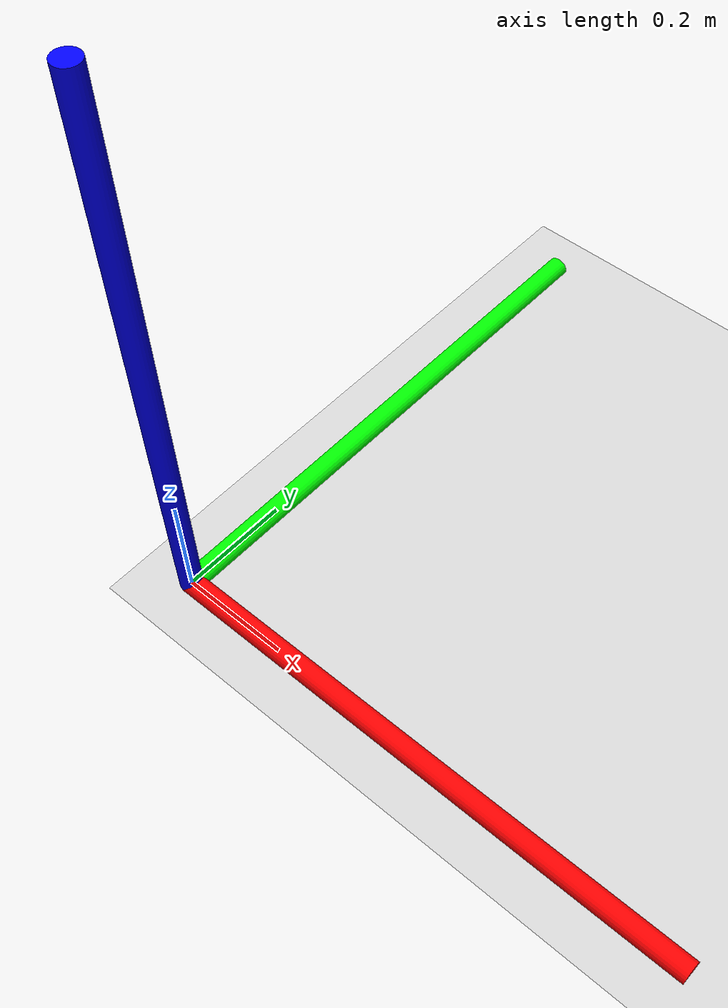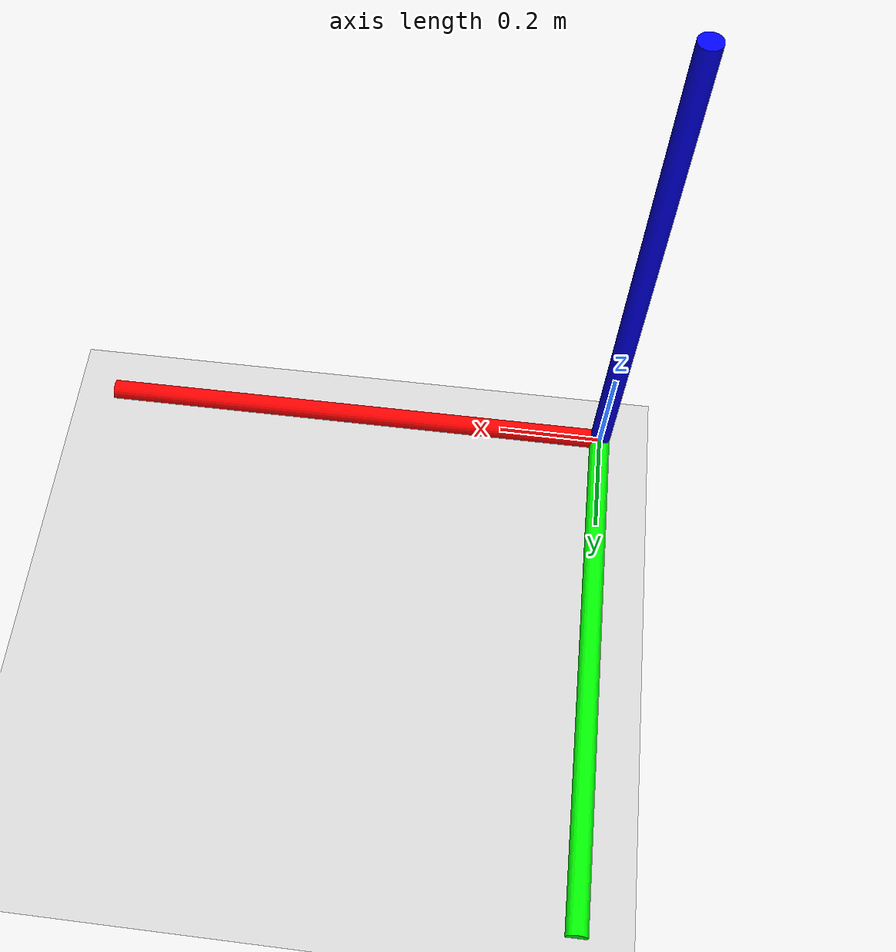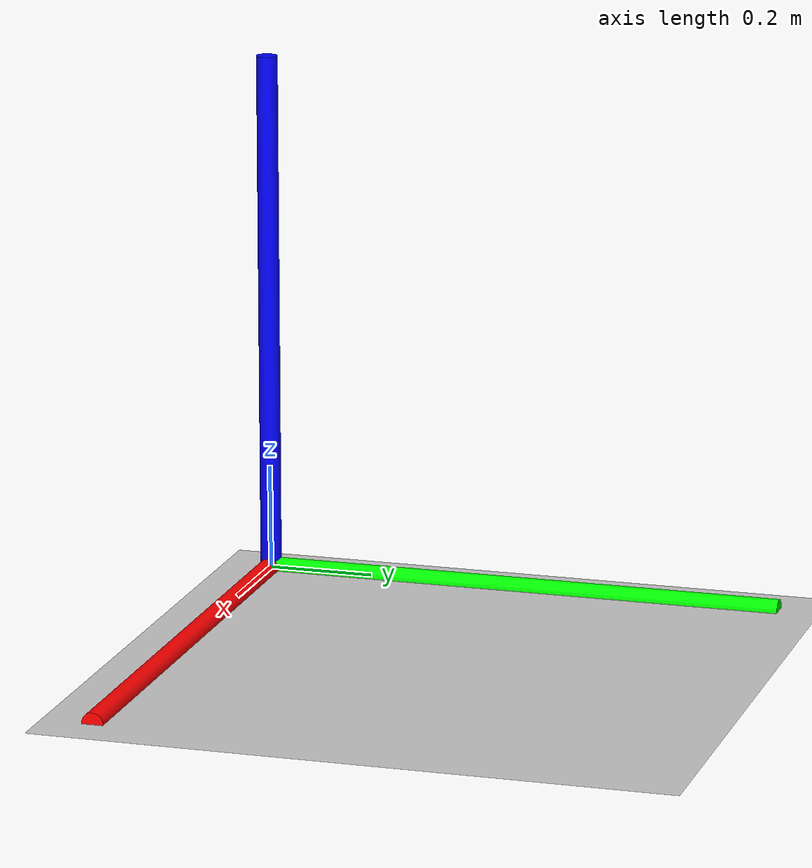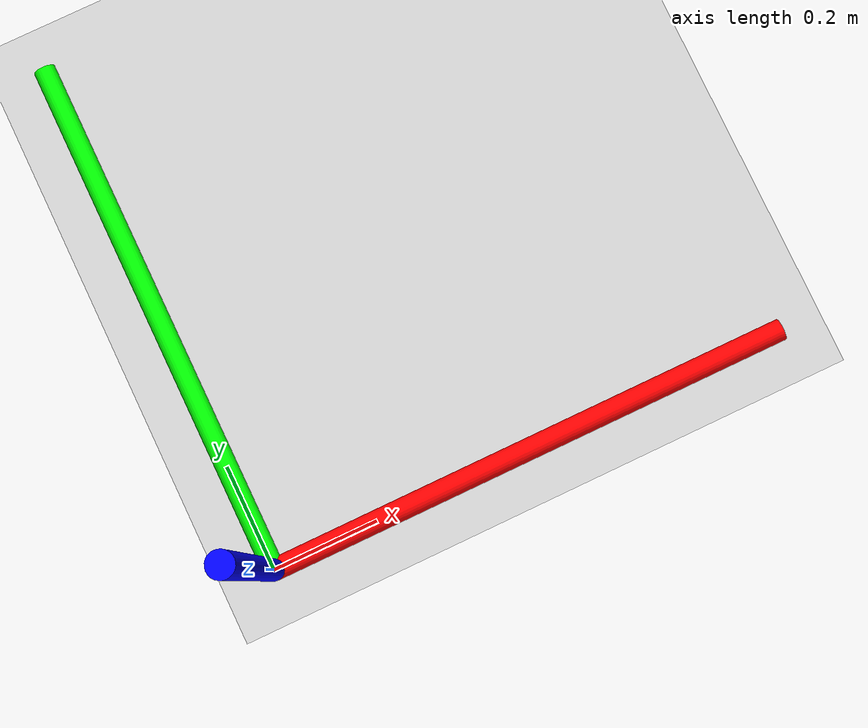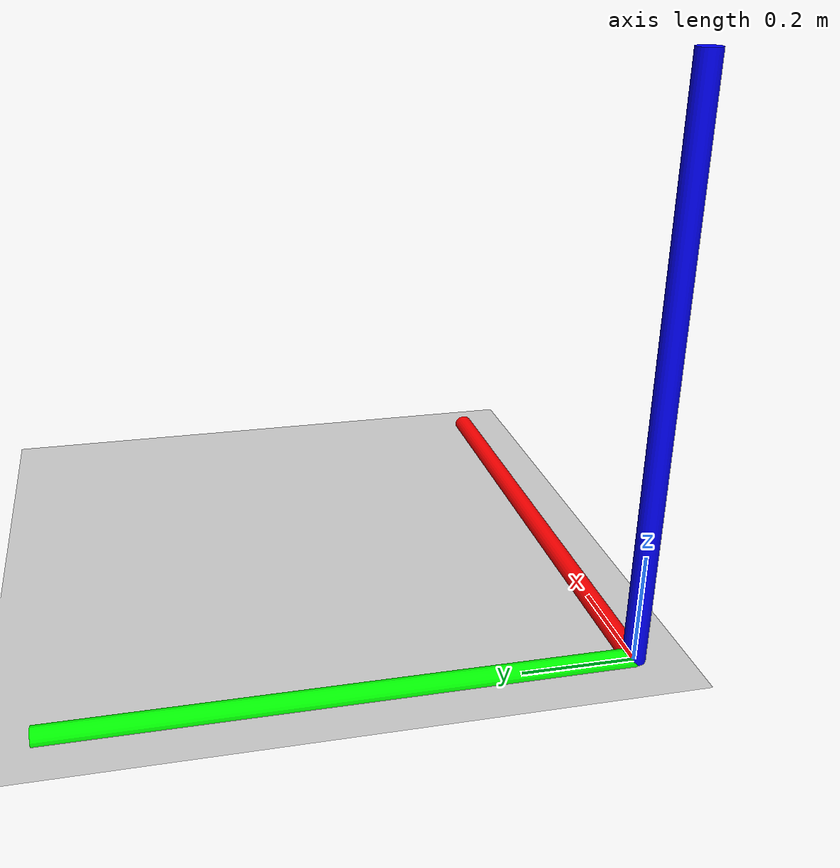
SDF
<sdf version='1.9'>
  <world name='bunker_world'>

    <!-- Physics Engine -->
    <physics name='ode_physics' type='ode'>
      <max_step_size>0.001</max_step_size>
      <real_time_factor>1.0</real_time_factor>
      <real_time_update_rate>1000</real_time_update_rate>
      <ode>
        <solver>
          <type>quick</type>
          <iters>50</iters>
          <sor>1.3</sor>
        </solver>
        <constraints>
          <cfm>0.0</cfm>
          <erp>0.2</erp>
          <contact_max_correcting_vel>100.0</contact_max_correcting_vel>
          <contact_surface_layer>0.001</contact_surface_layer>
        </constraints>
      </ode>
    </physics>

    <!-- Gravity -->
    <gravity>0 0 -9.8</gravity>

    <!-- Magnetic Field -->
    <magnetic_field>6e-06 2.3e-05 -4.2e-05</magnetic_field>

    <!-- Atmosphere -->
    <atmosphere type='adiabatic'/>

    <!-- Scene -->
    <scene>
      <ambient>0.4 0.4 0.4 1</ambient>
      <background>0.7 0.7 0.7 1</background>
      <shadows>true</shadows>
      <grid>false</grid>
    </scene>

    <!-- Ground Plane -->
    <model name='ground_plane'>
      <static>true</static>
      <link name='link'>
        <collision name='collision'>
          <geometry>
            <plane>
              <normal>0 0 1</normal>
              <size>100 100</size>
            </plane>
          </geometry>
          <surface>
            <friction>
              <ode>
                <mu>100</mu>
                <mu2>50</mu2>
              </ode>
            </friction>
            <bounce/>
            <contact>
              <ode/>
            </contact>
          </surface>
        </collision>
        <visual name='visual'>
          <geometry>
            <plane>
              <normal>0 0 1</normal>
              <size>100 100</size>
            </plane>
          </geometry>
          <material>
            <ambient>0.8 0.8 0.8 1</ambient>
            <diffuse>0.8 0.8 0.8 1</diffuse>
            <specular>0.8 0.8 0.8 1</specular>
          </material>
        </visual>
        <pose>0 0 0 0 0 0</pose>
      </link>
      <pose>0 0 0 0 0 0</pose>
    </model>

    <!-- Lighting -->
    <light name='sun' type='directional'>
      <pose>0 0 10 0 0 0</pose>
      <cast_shadows>true</cast_shadows>
      <intensity>1</intensity>
      <direction>-0.5 0.1 -0.9</direction>
      <diffuse>0.8 0.8 0.8 1</diffuse>
      <specular>0.2 0.2 0.2 1</specular>
      <attenuation>
        <range>1000</range>
        <linear>0.01</linear>
        <constant>0.9</constant>
        <quadratic>0.001</quadratic>
      </attenuation>
    </light>

    <!-- Optional: Add some visual markers for reference -->
    <model name='origin_marker'>
      <static>true</static>
      <link name='link'>
        <visual name='x_axis'>
          <geometry>
            <cylinder>
              <radius>0.02</radius>
              <length>1.0</length>
            </cylinder>
          </geometry>
          <material>
            <ambient>1 0 0 1</ambient>
            <diffuse>1 0 0 1</diffuse>
          </material>
          <pose>0.5 0 0 0 1.5708 0</pose>
        </visual>
        <visual name='y_axis'>
          <geometry>
            <cylinder>
              <radius>0.02</radius>
              <length>1.0</length>
            </cylinder>
          </geometry>
          <material>
            <ambient>0 1 0 1</ambient>
            <diffuse>0 1 0 1</diffuse>
          </material>
          <pose>0 0.5 0 1.5708 0 0</pose>
        </visual>
        <visual name='z_axis'>
          <geometry>
            <cylinder>
              <radius>0.02</radius>
              <length>1.0</length>
            </cylinder>
          </geometry>
          <material>
            <ambient>0 0 1 1</ambient>
            <diffuse>0 0 1 1</diffuse>
          </material>
          <pose>0 0 0.5 0 0 0</pose>
        </visual>
      </link>
      <pose>0 0 0 0 0 0</pose>
    </model>

  </world>
</sdf>
